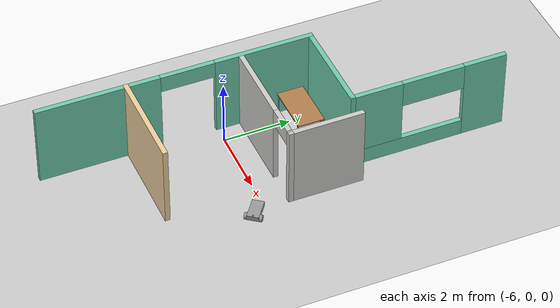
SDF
<sdf version="1.6">
 <world name="default">
  <model name="ground_plane">
   <static>1</static>
   <link name="link">
    <collision name="collision">
     <geometry><plane><normal>0 0 1</normal><size>100 100</size></plane></geometry>
     <surface><friction><ode><mu>100</mu><mu2>50</mu2></ode></friction></surface>
    </collision>
    <visual name="visual">
     <cast_shadows>0</cast_shadows>
     <geometry><plane><normal>0 0 1</normal><size>100 100</size></plane></geometry>
     <material>
      <script><uri>file://media/materials/scripts/gazebo.material</uri><name>Gazebo/Grey</name></script>
     </material>
    </visual>
   </link>
  </model>
  <model name="Building">
   <link name="Wall_271">
    <pose>-6.53342 -2.38169 0 0 -0 3.14159</pose>
    <visual name="Wall_271_Visual">
     <pose>0 0 1.25 0 -0 0</pose>
     <geometry><box><size>3 0.15 2.5</size></box></geometry>
     <material>
      <script><uri>file://media/materials/scripts/gazebo.material</uri><name>Gazebo/Grey</name></script>
      <ambient>0.921569 0.807843 0.615686 1</ambient>
      <shader type="pixel"/>
      <diffuse>0.7 0.7 0.7 1</diffuse>
      <specular>0.01 0.01 0.01 1</specular>
      <emissive>0 0 0 1</emissive>
     </material>
     <meta><layer>0</layer></meta>
    </visual>
    <collision name="Wall_271_Collision">
     <pose>0 0 1.25 0 -0 0</pose>
     <geometry><box><size>3 0.15 2.5</size></box></geometry>
     <surface>
      <friction>
       <ode><mu>1</mu><mu2>1</mu2><fdir1>0 0 0</fdir1><slip1>0</slip1><slip2>0</slip2></ode>
       <torsional>
        <coefficient>1</coefficient>
        <patch_radius>0</patch_radius>
        <surface_radius>0</surface_radius>
        <use_patch_radius>1</use_patch_radius>
        <ode><slip>0</slip></ode>
       </torsional>
      </friction>
      <bounce><restitution_coefficient>0</restitution_coefficient><threshold>1e+06</threshold></bounce>
      <contact>
       <collide_without_contact>0</collide_without_contact>
       <collide_without_contact_bitmask>1</collide_without_contact_bitmask>
       <collide_bitmask>1</collide_bitmask>
       <ode>
        <soft_cfm>0</soft_cfm>
        <soft_erp>0.2</soft_erp>
        <kp>1e+13</kp>
        <kd>1</kd>
        <max_vel>0.01</max_vel>
        <min_depth>0</min_depth>
       </ode>
       <bullet>
        <split_impulse>1</split_impulse>
        <split_impulse_penetration_threshold>-0.01</split_impulse_penetration_threshold>
        <soft_cfm>0</soft_cfm>
        <soft_erp>0.2</soft_erp>
        <kp>1e+13</kp>
        <kd>1</kd>
       </bullet>
      </contact>
     </surface>
    </collision>
   </link>
   <link name="Wall_3">
    <pose>-5.10853 5.41846 0 0 0 -1.5708</pose>
    <visual name="Wall_3_Visual_0">
     <pose>-1.72863 0 1.25 0 -0 0</pose>
     <geometry><box><size>1.29275 0.15 2.5</size></box></geometry>
     <material>
      <script><uri>file://media/materials/scripts/gazebo.material</uri><name>Gazebo/Grey</name></script>
      <ambient>0.435294 0.796078 0.67451 1</ambient>
      <shader type="pixel"/>
      <diffuse>0.7 0.7 0.7 1</diffuse>
      <specular>0.01 0.01 0.01 1</specular>
      <emissive>0 0 0 1</emissive>
     </material>
     <meta><layer>0</layer></meta>
    </visual>
    <visual name="Wall_3_Visual_1">
     <pose>0.646374 0 0.25 0 -0 0</pose>
     <geometry><box><size>3.45725 0.15 0.5</size></box></geometry>
     <material>
      <script><uri>file://media/materials/scripts/gazebo.material</uri><name>Gazebo/Grey</name></script>
      <ambient>0.435294 0.796078 0.67451 1</ambient>
      <shader type="pixel"/>
      <diffuse>0.7 0.7 0.7 1</diffuse>
      <specular>0.01 0.01 0.01 1</specular>
      <emissive>0 0 0 1</emissive>
     </material>
     <meta><layer>0</layer></meta>
    </visual>
    <visual name="Wall_3_Visual_2">
     <pose>1.58537 0 1.5 0 -0 0</pose>
     <geometry><box><size>1.57925 0.15 2</size></box></geometry>
     <material>
      <script><uri>file://media/materials/scripts/gazebo.material</uri><name>Gazebo/Grey</name></script>
      <ambient>0.435294 0.796078 0.67451 1</ambient>
      <shader type="pixel"/>
      <diffuse>0.7 0.7 0.7 1</diffuse>
      <specular>0.01 0.01 0.01 1</specular>
      <emissive>0 0 0 1</emissive>
     </material>
     <meta><layer>0</layer></meta>
    </visual>
    <visual name="Wall_3_Visual_3">
     <pose>-0.143253 0 2.1 0 -0 0</pose>
     <geometry><box><size>1.878 0.15 0.8</size></box></geometry>
     <material>
      <script><uri>file://media/materials/scripts/gazebo.material</uri><name>Gazebo/Grey</name></script>
      <ambient>0.435294 0.796078 0.67451 1</ambient>
      <shader type="pixel"/>
      <diffuse>0.7 0.7 0.7 1</diffuse>
      <specular>0.01 0.01 0.01 1</specular>
      <emissive>0 0 0 1</emissive>
     </material>
     <meta><layer>0</layer></meta>
    </visual>
    <collision name="Wall_3_Collision_3">
     <pose>-0.143253 0 2.1 0 -0 0</pose>
     <geometry><box><size>1.878 0.15 0.8</size></box></geometry>
     <surface>
      <friction>
       <ode><mu>1</mu><mu2>1</mu2><fdir1>0 0 0</fdir1><slip1>0</slip1><slip2>0</slip2></ode>
       <torsional>
        <coefficient>1</coefficient>
        <patch_radius>0</patch_radius>
        <surface_radius>0</surface_radius>
        <use_patch_radius>1</use_patch_radius>
        <ode><slip>0</slip></ode>
       </torsional>
      </friction>
      <bounce><restitution_coefficient>0</restitution_coefficient><threshold>1e+06</threshold></bounce>
      <contact>
       <collide_without_contact>0</collide_without_contact>
       <collide_without_contact_bitmask>1</collide_without_contact_bitmask>
       <collide_bitmask>1</collide_bitmask>
       <ode>
        <soft_cfm>0</soft_cfm>
        <soft_erp>0.2</soft_erp>
        <kp>1e+13</kp>
        <kd>1</kd>
        <max_vel>0.01</max_vel>
        <min_depth>0</min_depth>
       </ode>
       <bullet>
        <split_impulse>1</split_impulse>
        <split_impulse_penetration_threshold>-0.01</split_impulse_penetration_threshold>
        <soft_cfm>0</soft_cfm>
        <soft_erp>0.2</soft_erp>
        <kp>1e+13</kp>
        <kd>1</kd>
       </bullet>
      </contact>
     </surface>
    </collision>
    <collision name="Wall_3_Collision_0">
     <pose>-1.72863 0 1.25 0 -0 0</pose>
     <geometry><box><size>1.29275 0.15 2.5</size></box></geometry>
     <surface>
      <friction>
       <ode><mu>1</mu><mu2>1</mu2><fdir1>0 0 0</fdir1><slip1>0</slip1><slip2>0</slip2></ode>
       <torsional>
        <coefficient>1</coefficient>
        <patch_radius>0</patch_radius>
        <surface_radius>0</surface_radius>
        <use_patch_radius>1</use_patch_radius>
        <ode><slip>0</slip></ode>
       </torsional>
      </friction>
      <bounce><restitution_coefficient>0</restitution_coefficient><threshold>1e+06</threshold></bounce>
      <contact>
       <collide_without_contact>0</collide_without_contact>
       <collide_without_contact_bitmask>1</collide_without_contact_bitmask>
       <collide_bitmask>1</collide_bitmask>
       <ode>
        <soft_cfm>0</soft_cfm>
        <soft_erp>0.2</soft_erp>
        <kp>1e+13</kp>
        <kd>1</kd>
        <max_vel>0.01</max_vel>
        <min_depth>0</min_depth>
       </ode>
       <bullet>
        <split_impulse>1</split_impulse>
        <split_impulse_penetration_threshold>-0.01</split_impulse_penetration_threshold>
        <soft_cfm>0</soft_cfm>
        <soft_erp>0.2</soft_erp>
        <kp>1e+13</kp>
        <kd>1</kd>
       </bullet>
      </contact>
     </surface>
    </collision>
    <collision name="Wall_3_Collision_1">
     <pose>0.646374 0 0.25 0 -0 0</pose>
     <geometry><box><size>3.45725 0.15 0.5</size></box></geometry>
     <surface>
      <friction>
       <ode><mu>1</mu><mu2>1</mu2><fdir1>0 0 0</fdir1><slip1>0</slip1><slip2>0</slip2></ode>
       <torsional>
        <coefficient>1</coefficient>
        <patch_radius>0</patch_radius>
        <surface_radius>0</surface_radius>
        <use_patch_radius>1</use_patch_radius>
        <ode><slip>0</slip></ode>
       </torsional>
      </friction>
      <bounce><restitution_coefficient>0</restitution_coefficient><threshold>1e+06</threshold></bounce>
      <contact>
       <collide_without_contact>0</collide_without_contact>
       <collide_without_contact_bitmask>1</collide_without_contact_bitmask>
       <collide_bitmask>1</collide_bitmask>
       <ode>
        <soft_cfm>0</soft_cfm>
        <soft_erp>0.2</soft_erp>
        <kp>1e+13</kp>
        <kd>1</kd>
        <max_vel>0.01</max_vel>
        <min_depth>0</min_depth>
       </ode>
       <bullet>
        <split_impulse>1</split_impulse>
        <split_impulse_penetration_threshold>-0.01</split_impulse_penetration_threshold>
        <soft_cfm>0</soft_cfm>
        <soft_erp>0.2</soft_erp>
        <kp>1e+13</kp>
        <kd>1</kd>
       </bullet>
      </contact>
     </surface>
    </collision>
    <collision name="Wall_3_Collision_2">
     <pose>1.58537 0 1.5 0 -0 0</pose>
     <geometry><box><size>1.57925 0.15 2</size></box></geometry>
     <surface>
      <friction>
       <ode><mu>1</mu><mu2>1</mu2><fdir1>0 0 0</fdir1><slip1>0</slip1><slip2>0</slip2></ode>
       <torsional>
        <coefficient>1</coefficient>
        <patch_radius>0</patch_radius>
        <surface_radius>0</surface_radius>
        <use_patch_radius>1</use_patch_radius>
        <ode><slip>0</slip></ode>
       </torsional>
      </friction>
      <bounce><restitution_coefficient>0</restitution_coefficient><threshold>1e+06</threshold></bounce>
      <contact>
       <collide_without_contact>0</collide_without_contact>
       <collide_without_contact_bitmask>1</collide_without_contact_bitmask>
       <collide_bitmask>1</collide_bitmask>
       <ode>
        <soft_cfm>0</soft_cfm>
        <soft_erp>0.2</soft_erp>
        <kp>1e+13</kp>
        <kd>1</kd>
        <max_vel>0.01</max_vel>
        <min_depth>0</min_depth>
       </ode>
       <bullet>
        <split_impulse>1</split_impulse>
        <split_impulse_penetration_threshold>-0.01</split_impulse_penetration_threshold>
        <soft_cfm>0</soft_cfm>
        <soft_erp>0.2</soft_erp>
        <kp>1e+13</kp>
        <kd>1</kd>
       </bullet>
      </contact>
     </surface>
    </collision>
   </link>
   <link name="Wall_349">
    <pose>-4.45949 2.05019 0 0 0 -1.5708</pose>
    <visual name="Wall_349_Visual">
     <pose>0 0 1.25 0 -0 0</pose>
     <geometry><box><size>2.25 0.15 2.5</size></box></geometry>
     <material>
      <script><uri>file://media/materials/scripts/gazebo.material</uri><name>Gazebo/CeilingTiled</name></script>
      <ambient>0.921569 0.807843 0.615686 1</ambient>
      <shader type="pixel"/>
      <diffuse>1 1 1 1</diffuse>
      <specular>0 0 0 1</specular>
      <emissive>0 0 0 1</emissive>
     </material>
     <meta><layer>0</layer></meta>
    </visual>
    <collision name="Wall_349_Collision">
     <pose>0 0 1.25 0 -0 0</pose>
     <geometry><box><size>2.25 0.15 2.5</size></box></geometry>
     <surface>
      <friction>
       <ode><mu>1</mu><mu2>1</mu2><fdir1>0 0 0</fdir1><slip1>0</slip1><slip2>0</slip2></ode>
       <torsional>
        <coefficient>1</coefficient>
        <patch_radius>0</patch_radius>
        <surface_radius>0</surface_radius>
        <use_patch_radius>1</use_patch_radius>
        <ode><slip>0</slip></ode>
       </torsional>
      </friction>
      <bounce><restitution_coefficient>0</restitution_coefficient><threshold>1e+06</threshold></bounce>
      <contact>
       <collide_without_contact>0</collide_without_contact>
       <collide_without_contact_bitmask>1</collide_without_contact_bitmask>
       <collide_bitmask>1</collide_bitmask>
       <ode>
        <soft_cfm>0</soft_cfm>
        <soft_erp>0.2</soft_erp>
        <kp>1e+13</kp>
        <kd>1</kd>
        <max_vel>0.01</max_vel>
        <min_depth>0</min_depth>
       </ode>
       <bullet>
        <split_impulse>1</split_impulse>
        <split_impulse_penetration_threshold>-0.01</split_impulse_penetration_threshold>
        <soft_cfm>0</soft_cfm>
        <soft_erp>0.2</soft_erp>
        <kp>1e+13</kp>
        <kd>1</kd>
       </bullet>
      </contact>
     </surface>
    </collision>
   </link>
   <link name="Wall_350">
    <pose>-6.13449 1.00019 0 0 -0 3.14159</pose>
    <visual name="Wall_350_Visual_0">
     <pose>-1.66412 0 1.25 0 -0 0</pose>
     <geometry><box><size>0.17176 0.15 2.5</size></box></geometry>
     <material>
      <script><uri>file://media/materials/scripts/gazebo.material</uri><name>Gazebo/CeilingTiled</name></script>
      <ambient>0.921569 0.807843 0.615686 1</ambient>
      <shader type="pixel"/>
      <diffuse>1 1 1 1</diffuse>
      <specular>0 0 0 1</specular>
      <emissive>0 0 0 1</emissive>
     </material>
     <meta><layer>0</layer></meta>
    </visual>
    <visual name="Wall_350_Visual_1">
     <pose>0.53588 0 1.25 0 -0 0</pose>
     <geometry><box><size>2.42824 0.15 2.5</size></box></geometry>
     <material>
      <script><uri>file://media/materials/scripts/gazebo.material</uri><name>Gazebo/CeilingTiled</name></script>
      <ambient>0.921569 0.807843 0.615686 1</ambient>
      <shader type="pixel"/>
      <diffuse>1 1 1 1</diffuse>
      <specular>0 0 0 1</specular>
      <emissive>0 0 0 1</emissive>
     </material>
     <meta><layer>0</layer></meta>
    </visual>
    <visual name="Wall_350_Visual_2">
     <pose>-1.12824 0 2.25 0 -0 0</pose>
     <geometry><box><size>0.9 0.15 0.5</size></box></geometry>
     <material>
      <script><uri>file://media/materials/scripts/gazebo.material</uri><name>Gazebo/CeilingTiled</name></script>
      <ambient>0.921569 0.807843 0.615686 1</ambient>
      <shader type="pixel"/>
      <diffuse>1 1 1 1</diffuse>
      <specular>0 0 0 1</specular>
      <emissive>0 0 0 1</emissive>
     </material>
     <meta><layer>0</layer></meta>
    </visual>
    <collision name="Wall_350_Collision_0">
     <pose>-1.66412 0 1.25 0 -0 0</pose>
     <geometry><box><size>0.17176 0.15 2.5</size></box></geometry>
     <surface>
      <friction>
       <ode><mu>1</mu><mu2>1</mu2><fdir1>0 0 0</fdir1><slip1>0</slip1><slip2>0</slip2></ode>
       <torsional>
        <coefficient>1</coefficient>
        <patch_radius>0</patch_radius>
        <surface_radius>0</surface_radius>
        <use_patch_radius>1</use_patch_radius>
        <ode><slip>0</slip></ode>
       </torsional>
      </friction>
      <bounce><restitution_coefficient>0</restitution_coefficient><threshold>1e+06</threshold></bounce>
      <contact>
       <collide_without_contact>0</collide_without_contact>
       <collide_without_contact_bitmask>1</collide_without_contact_bitmask>
       <collide_bitmask>1</collide_bitmask>
       <ode>
        <soft_cfm>0</soft_cfm>
        <soft_erp>0.2</soft_erp>
        <kp>1e+13</kp>
        <kd>1</kd>
        <max_vel>0.01</max_vel>
        <min_depth>0</min_depth>
       </ode>
       <bullet>
        <split_impulse>1</split_impulse>
        <split_impulse_penetration_threshold>-0.01</split_impulse_penetration_threshold>
        <soft_cfm>0</soft_cfm>
        <soft_erp>0.2</soft_erp>
        <kp>1e+13</kp>
        <kd>1</kd>
       </bullet>
      </contact>
     </surface>
    </collision>
    <collision name="Wall_350_Collision_1">
     <pose>0.53588 0 1.25 0 -0 0</pose>
     <geometry><box><size>2.42824 0.15 2.5</size></box></geometry>
     <surface>
      <friction>
       <ode><mu>1</mu><mu2>1</mu2><fdir1>0 0 0</fdir1><slip1>0</slip1><slip2>0</slip2></ode>
       <torsional>
        <coefficient>1</coefficient>
        <patch_radius>0</patch_radius>
        <surface_radius>0</surface_radius>
        <use_patch_radius>1</use_patch_radius>
        <ode><slip>0</slip></ode>
       </torsional>
      </friction>
      <bounce><restitution_coefficient>0</restitution_coefficient><threshold>1e+06</threshold></bounce>
      <contact>
       <collide_without_contact>0</collide_without_contact>
       <collide_without_contact_bitmask>1</collide_without_contact_bitmask>
       <collide_bitmask>1</collide_bitmask>
       <ode>
        <soft_cfm>0</soft_cfm>
        <soft_erp>0.2</soft_erp>
        <kp>1e+13</kp>
        <kd>1</kd>
        <max_vel>0.01</max_vel>
        <min_depth>0</min_depth>
       </ode>
       <bullet>
        <split_impulse>1</split_impulse>
        <split_impulse_penetration_threshold>-0.01</split_impulse_penetration_threshold>
        <soft_cfm>0</soft_cfm>
        <soft_erp>0.2</soft_erp>
        <kp>1e+13</kp>
        <kd>1</kd>
       </bullet>
      </contact>
     </surface>
    </collision>
    <collision name="Wall_350_Collision_2">
     <pose>-1.12824 0 2.25 0 -0 0</pose>
     <geometry><box><size>0.9 0.15 0.5</size></box></geometry>
     <surface>
      <friction>
       <ode><mu>1</mu><mu2>1</mu2><fdir1>0 0 0</fdir1><slip1>0</slip1><slip2>0</slip2></ode>
       <torsional>
        <coefficient>1</coefficient>
        <patch_radius>0</patch_radius>
        <surface_radius>0</surface_radius>
        <use_patch_radius>1</use_patch_radius>
        <ode><slip>0</slip></ode>
       </torsional>
      </friction>
      <bounce><restitution_coefficient>0</restitution_coefficient><threshold>1e+06</threshold></bounce>
      <contact>
       <collide_without_contact>0</collide_without_contact>
       <collide_without_contact_bitmask>1</collide_without_contact_bitmask>
       <collide_bitmask>1</collide_bitmask>
       <ode>
        <soft_cfm>0</soft_cfm>
        <soft_erp>0.2</soft_erp>
        <kp>1e+13</kp>
        <kd>1</kd>
        <max_vel>0.01</max_vel>
        <min_depth>0</min_depth>
       </ode>
       <bullet>
        <split_impulse>1</split_impulse>
        <split_impulse_penetration_threshold>-0.01</split_impulse_penetration_threshold>
        <soft_cfm>0</soft_cfm>
        <soft_erp>0.2</soft_erp>
        <kp>1e+13</kp>
        <kd>1</kd>
       </bullet>
      </contact>
     </surface>
    </collision>
   </link>
   <link name="Wall_4">
    <pose>-6.53348 3.11838 0 0 0 -3.14154</pose>
    <visual name="Wall_4_Visual">
     <pose>0 0 1.25 0 -0 0</pose>
     <geometry><box><size>3 0.15 2.5</size></box></geometry>
     <material>
      <script><uri>file://media/materials/scripts/gazebo.material</uri><name>Gazebo/Grey</name></script>
      <ambient>0.435294 0.796078 0.67451 1</ambient>
      <shader type="pixel"/>
      <diffuse>0.7 0.7 0.7 1</diffuse>
      <specular>0.01 0.01 0.01 1</specular>
      <emissive>0 0 0 1</emissive>
     </material>
     <meta><layer>0</layer></meta>
    </visual>
    <collision name="Wall_4_Collision">
     <pose>0 0 1.25 0 -0 0</pose>
     <geometry><box><size>3 0.15 2.5</size></box></geometry>
     <surface>
      <friction>
       <ode><mu>1</mu><mu2>1</mu2><fdir1>0 0 0</fdir1><slip1>0</slip1><slip2>0</slip2></ode>
       <torsional>
        <coefficient>1</coefficient>
        <patch_radius>0</patch_radius>
        <surface_radius>0</surface_radius>
        <use_patch_radius>1</use_patch_radius>
        <ode><slip>0</slip></ode>
       </torsional>
      </friction>
      <bounce><restitution_coefficient>0</restitution_coefficient><threshold>1e+06</threshold></bounce>
      <contact>
       <collide_without_contact>0</collide_without_contact>
       <collide_without_contact_bitmask>1</collide_without_contact_bitmask>
       <collide_bitmask>1</collide_bitmask>
       <ode>
        <soft_cfm>0</soft_cfm>
        <soft_erp>0.2</soft_erp>
        <kp>1e+13</kp>
        <kd>1</kd>
        <max_vel>0.01</max_vel>
        <min_depth>0</min_depth>
       </ode>
       <bullet>
        <split_impulse>1</split_impulse>
        <split_impulse_penetration_threshold>-0.01</split_impulse_penetration_threshold>
        <soft_cfm>0</soft_cfm>
        <soft_erp>0.2</soft_erp>
        <kp>1e+13</kp>
        <kd>1</kd>
       </bullet>
      </contact>
     </surface>
    </collision>
   </link>
   <link name="Wall_5">
    <pose>-7.95842 -0.931691 0 0 0 -1.5708</pose>
    <visual name="Wall_5_Visual_0">
     <pose>-2.6376 0 1.25 0 -0 0</pose>
     <geometry><box><size>2.9748 0.15 2.5</size></box></geometry>
     <material>
      <script><uri>file://media/materials/scripts/gazebo.material</uri><name>Gazebo/Grey</name></script>
      <ambient>0.435294 0.796078 0.67451 1</ambient>
      <shader type="pixel"/>
      <diffuse>0.7 0.7 0.7 1</diffuse>
      <specular>0.01 0.01 0.01 1</specular>
      <emissive>0 0 0 1</emissive>
     </material>
     <meta><layer>0</layer></meta>
    </visual>
    <visual name="Wall_5_Visual_1">
     <pose>2.29573 0 1.25 0 -0 0</pose>
     <geometry><box><size>3.65854 0.15 2.5</size></box></geometry>
     <material>
      <script><uri>file://media/materials/scripts/gazebo.material</uri><name>Gazebo/Grey</name></script>
      <ambient>0.435294 0.796078 0.67451 1</ambient>
      <shader type="pixel"/>
      <diffuse>0.7 0.7 0.7 1</diffuse>
      <specular>0.01 0.01 0.01 1</specular>
      <emissive>0 0 0 1</emissive>
     </material>
     <meta><layer>0</layer></meta>
    </visual>
    <visual name="Wall_5_Visual_2">
     <pose>-0.341874 0 2.25 0 -0 0</pose>
     <geometry><box><size>1.61666 0.15 0.5</size></box></geometry>
     <material>
      <script><uri>file://media/materials/scripts/gazebo.material</uri><name>Gazebo/Grey</name></script>
      <ambient>0.435294 0.796078 0.67451 1</ambient>
      <shader type="pixel"/>
      <diffuse>0.7 0.7 0.7 1</diffuse>
      <specular>0.01 0.01 0.01 1</specular>
      <emissive>0 0 0 1</emissive>
     </material>
     <meta><layer>0</layer></meta>
    </visual>
    <collision name="Wall_5_Collision_1">
     <pose>2.29573 0 1.25 0 -0 0</pose>
     <geometry><box><size>3.65854 0.15 2.5</size></box></geometry>
     <surface>
      <friction>
       <ode><mu>1</mu><mu2>1</mu2><fdir1>0 0 0</fdir1><slip1>0</slip1><slip2>0</slip2></ode>
       <torsional>
        <coefficient>1</coefficient>
        <patch_radius>0</patch_radius>
        <surface_radius>0</surface_radius>
        <use_patch_radius>1</use_patch_radius>
        <ode><slip>0</slip></ode>
       </torsional>
      </friction>
      <bounce><restitution_coefficient>0</restitution_coefficient><threshold>1e+06</threshold></bounce>
      <contact>
       <collide_without_contact>0</collide_without_contact>
       <collide_without_contact_bitmask>1</collide_without_contact_bitmask>
       <collide_bitmask>1</collide_bitmask>
       <ode>
        <soft_cfm>0</soft_cfm>
        <soft_erp>0.2</soft_erp>
        <kp>1e+13</kp>
        <kd>1</kd>
        <max_vel>0.01</max_vel>
        <min_depth>0</min_depth>
       </ode>
       <bullet>
        <split_impulse>1</split_impulse>
        <split_impulse_penetration_threshold>-0.01</split_impulse_penetration_threshold>
        <soft_cfm>0</soft_cfm>
        <soft_erp>0.2</soft_erp>
        <kp>1e+13</kp>
        <kd>1</kd>
       </bullet>
      </contact>
     </surface>
    </collision>
    <collision name="Wall_5_Collision_0">
     <pose>-2.6376 0 1.25 0 -0 0</pose>
     <geometry><box><size>2.9748 0.15 2.5</size></box></geometry>
     <surface>
      <friction>
       <ode><mu>1</mu><mu2>1</mu2><fdir1>0 0 0</fdir1><slip1>0</slip1><slip2>0</slip2></ode>
       <torsional>
        <coefficient>1</coefficient>
        <patch_radius>0</patch_radius>
        <surface_radius>0</surface_radius>
        <use_patch_radius>1</use_patch_radius>
        <ode><slip>0</slip></ode>
       </torsional>
      </friction>
      <bounce><restitution_coefficient>0</restitution_coefficient><threshold>1e+06</threshold></bounce>
      <contact>
       <collide_without_contact>0</collide_without_contact>
       <collide_without_contact_bitmask>1</collide_without_contact_bitmask>
       <collide_bitmask>1</collide_bitmask>
       <ode>
        <soft_cfm>0</soft_cfm>
        <soft_erp>0.2</soft_erp>
        <kp>1e+13</kp>
        <kd>1</kd>
        <max_vel>0.01</max_vel>
        <min_depth>0</min_depth>
       </ode>
       <bullet>
        <split_impulse>1</split_impulse>
        <split_impulse_penetration_threshold>-0.01</split_impulse_penetration_threshold>
        <soft_cfm>0</soft_cfm>
        <soft_erp>0.2</soft_erp>
        <kp>1e+13</kp>
        <kd>1</kd>
       </bullet>
      </contact>
     </surface>
    </collision>
    <collision name="Wall_5_Collision_2">
     <pose>-0.341874 0 2.25 0 -0 0</pose>
     <geometry><box><size>1.61666 0.15 0.5</size></box></geometry>
     <surface>
      <friction>
       <ode><mu>1</mu><mu2>1</mu2><fdir1>0 0 0</fdir1><slip1>0</slip1><slip2>0</slip2></ode>
       <torsional>
        <coefficient>1</coefficient>
        <patch_radius>0</patch_radius>
        <surface_radius>0</surface_radius>
        <use_patch_radius>1</use_patch_radius>
        <ode><slip>0</slip></ode>
       </torsional>
      </friction>
      <bounce><restitution_coefficient>0</restitution_coefficient><threshold>1e+06</threshold></bounce>
      <contact>
       <collide_without_contact>0</collide_without_contact>
       <collide_without_contact_bitmask>1</collide_without_contact_bitmask>
       <collide_bitmask>1</collide_bitmask>
       <ode>
        <soft_cfm>0</soft_cfm>
        <soft_erp>0.2</soft_erp>
        <kp>1e+13</kp>
        <kd>1</kd>
        <max_vel>0.01</max_vel>
        <min_depth>0</min_depth>
       </ode>
       <bullet>
        <split_impulse>1</split_impulse>
        <split_impulse_penetration_threshold>-0.01</split_impulse_penetration_threshold>
        <soft_cfm>0</soft_cfm>
        <soft_erp>0.2</soft_erp>
        <kp>1e+13</kp>
        <kd>1</kd>
       </bullet>
      </contact>
     </surface>
    </collision>
   </link>
   <static>1</static>
   <pose>1.39929 -0.252215 0 0 -0 0</pose>
  </model>
  <model name="table_0">
   <static>1</static>
   <link name="link">
    <collision name="surface">
     <pose>0 0 1 0 -0 0</pose>
     <geometry><box><size>1.5 0.8 0.03</size></box></geometry>
     <surface><friction><ode><mu>0.6</mu><mu2>0.6</mu2></ode></friction></surface>
    </collision>
    <visual name="visual1">
     <pose>0 0 1 0 -0 0</pose>
     <geometry><box><size>1.5 0.8 0.03</size></box></geometry>
     <material>
      <script><uri>file://media/materials/scripts/gazebo.material</uri><name>Gazebo/Wood</name></script>
     </material>
    </visual>
    <collision name="front_left_leg">
     <pose>0.68 0.38 0.5 0 -0 0</pose>
     <geometry><cylinder><radius>0.02</radius><length>1</length></cylinder></geometry>
    </collision>
    <visual name="front_left_leg">
     <pose>0.68 0.38 0.5 0 -0 0</pose>
     <geometry><cylinder><radius>0.02</radius><length>1</length></cylinder></geometry>
     <material>
      <script><uri>file://media/materials/scripts/gazebo.material</uri><name>Gazebo/Grey</name></script>
     </material>
    </visual>
    <collision name="front_right_leg">
     <pose>0.68 -0.38 0.5 0 -0 0</pose>
     <geometry><cylinder><radius>0.02</radius><length>1</length></cylinder></geometry>
    </collision>
    <visual name="front_right_leg">
     <pose>0.68 -0.38 0.5 0 -0 0</pose>
     <geometry><cylinder><radius>0.02</radius><length>1</length></cylinder></geometry>
     <material>
      <script><uri>file://media/materials/scripts/gazebo.material</uri><name>Gazebo/Grey</name></script>
     </material>
    </visual>
    <collision name="back_right_leg">
     <pose>-0.68 -0.38 0.5 0 -0 0</pose>
     <geometry><cylinder><radius>0.02</radius><length>1</length></cylinder></geometry>
    </collision>
    <visual name="back_right_leg">
     <pose>-0.68 -0.38 0.5 0 -0 0</pose>
     <geometry><cylinder><radius>0.02</radius><length>1</length></cylinder></geometry>
     <material>
      <script><uri>file://media/materials/scripts/gazebo.material</uri><name>Gazebo/Grey</name></script>
     </material>
    </visual>
    <collision name="back_left_leg">
     <pose>-0.68 0.38 0.5 0 -0 0</pose>
     <geometry><cylinder><radius>0.02</radius><length>1</length></cylinder></geometry>
    </collision>
    <visual name="back_left_leg">
     <pose>-0.68 0.38 0.5 0 -0 0</pose>
     <geometry><cylinder><radius>0.02</radius><length>1</length></cylinder></geometry>
     <material>
      <script><uri>file://media/materials/scripts/gazebo.material</uri><name>Gazebo/Grey</name></script>
     </material>
    </visual>
   </link>
   <pose>-5.43079 2.09847 0 0 -0 0</pose>
  </model>
  <model name="VehicleRobot">
   <link name="link_10_clone">
    <pose>0.278989 0.302807 0.099972 1.5707 -0 0</pose>
    <inertial>
     <mass>0.5</mass>
     <inertia><ixx>0.145833</ixx><ixy>0</ixy><ixz>0</ixz><iyy>0.145833</iyy><iyz>0</iyz><izz>0.125</izz></inertia>
    </inertial>
    <visual name="visual">
     <geometry><cylinder><radius>0.1</radius><length>0.08</length></cylinder></geometry>
     <material>
      <lighting>1</lighting>
      <script><uri>file://media/materials/scripts/gazebo.material</uri><name>Gazebo/Grey</name></script>
      <shader type="pixel"><normal_map>__default__</normal_map></shader>
      <ambient>0.3 0.3 0.3 1</ambient>
      <diffuse>0.7 0.7 0.7 1</diffuse>
      <specular>0.01 0.01 0.01 1</specular>
      <emissive>0 0 0 1</emissive>
     </material>
    </visual>
    <collision name="collision">
     <geometry><cylinder><radius>0.1</radius><length>0.08</length></cylinder></geometry>
     <surface>
      <friction>
       <ode><mu>1</mu><mu2>1</mu2><fdir1>0 0 0</fdir1><slip1>0</slip1><slip2>0</slip2></ode>
       <torsional>
        <coefficient>1</coefficient>
        <patch_radius>0</patch_radius>
        <surface_radius>0</surface_radius>
        <use_patch_radius>1</use_patch_radius>
        <ode><slip>0</slip></ode>
       </torsional>
      </friction>
      <bounce><restitution_coefficient>0</restitution_coefficient><threshold>1e+06</threshold></bounce>
      <contact>
       <collide_without_contact>0</collide_without_contact>
       <collide_without_contact_bitmask>1</collide_without_contact_bitmask>
       <collide_bitmask>1</collide_bitmask>
       <ode>
        <soft_cfm>0</soft_cfm>
        <soft_erp>0.2</soft_erp>
        <kp>1e+13</kp>
        <kd>1</kd>
        <max_vel>0.01</max_vel>
        <min_depth>0</min_depth>
       </ode>
       <bullet>
        <split_impulse>1</split_impulse>
        <split_impulse_penetration_threshold>-0.01</split_impulse_penetration_threshold>
        <soft_cfm>0</soft_cfm>
        <soft_erp>0.2</soft_erp>
        <kp>1e+13</kp>
        <kd>1</kd>
       </bullet>
      </contact>
     </surface>
    </collision>
   </link>
   <link name="link_10_clone_clone">
    <pose>0.278989 -0.128364 0.100018 1.5707 -0 0</pose>
    <inertial>
     <mass>0.5</mass>
     <inertia><ixx>0.145833</ixx><ixy>0</ixy><ixz>0</ixz><iyy>0.145833</iyy><iyz>0</iyz><izz>0.125</izz></inertia>
    </inertial>
    <visual name="visual">
     <geometry><cylinder><radius>0.1</radius><length>0.08</length></cylinder></geometry>
     <material>
      <lighting>1</lighting>
      <script><uri>file://media/materials/scripts/gazebo.material</uri><name>Gazebo/Grey</name></script>
      <shader type="pixel"><normal_map>__default__</normal_map></shader>
      <ambient>0.3 0.3 0.3 1</ambient>
      <diffuse>0.7 0.7 0.7 1</diffuse>
      <specular>0.01 0.01 0.01 1</specular>
      <emissive>0 0 0 1</emissive>
     </material>
    </visual>
    <collision name="collision">
     <geometry><cylinder><radius>0.1</radius><length>0.08</length></cylinder></geometry>
     <surface>
      <friction>
       <ode><mu>1</mu><mu2>1</mu2><fdir1>0 0 0</fdir1><slip1>0</slip1><slip2>0</slip2></ode>
       <torsional>
        <coefficient>1</coefficient>
        <patch_radius>0</patch_radius>
        <surface_radius>0</surface_radius>
        <use_patch_radius>1</use_patch_radius>
        <ode><slip>0</slip></ode>
       </torsional>
      </friction>
      <bounce><restitution_coefficient>0</restitution_coefficient><threshold>1e+06</threshold></bounce>
      <contact>
       <collide_without_contact>0</collide_without_contact>
       <collide_without_contact_bitmask>1</collide_without_contact_bitmask>
       <collide_bitmask>1</collide_bitmask>
       <ode>
        <soft_cfm>0</soft_cfm>
        <soft_erp>0.2</soft_erp>
        <kp>1e+13</kp>
        <kd>1</kd>
        <max_vel>0.01</max_vel>
        <min_depth>0</min_depth>
       </ode>
       <bullet>
        <split_impulse>1</split_impulse>
        <split_impulse_penetration_threshold>-0.01</split_impulse_penetration_threshold>
        <soft_cfm>0</soft_cfm>
        <soft_erp>0.2</soft_erp>
        <kp>1e+13</kp>
        <kd>1</kd>
       </bullet>
      </contact>
     </surface>
    </collision>
   </link>
   <link name="link_11">
    <pose>-0.191011 0.086646 0.08 0 -0 0</pose>
    <inertial>
     <mass>0.5</mass>
     <inertia><ixx>0.1</ixx><ixy>0</ixy><ixz>0</ixz><iyy>0.1</iyy><iyz>0</iyz><izz>0.1</izz></inertia>
    </inertial>
    <visual name="visual">
     <geometry><sphere><radius>0.08</radius></sphere></geometry>
     <material>
      <lighting>1</lighting>
      <script><uri>file://media/materials/scripts/gazebo.material</uri><name>Gazebo/Grey</name></script>
      <shader type="pixel"><normal_map>__default__</normal_map></shader>
      <ambient>0.3 0.3 0.3 1</ambient>
      <diffuse>0.7 0.7 0.7 1</diffuse>
      <specular>0.01 0.01 0.01 1</specular>
      <emissive>0 0 0 1</emissive>
     </material>
    </visual>
    <collision name="collision">
     <geometry><sphere><radius>0.08</radius></sphere></geometry>
     <surface>
      <friction>
       <ode><mu>1</mu><mu2>1</mu2><fdir1>0 0 0</fdir1><slip1>0</slip1><slip2>0</slip2></ode>
       <torsional>
        <coefficient>1</coefficient>
        <patch_radius>0</patch_radius>
        <surface_radius>0</surface_radius>
        <use_patch_radius>1</use_patch_radius>
        <ode><slip>0</slip></ode>
       </torsional>
      </friction>
      <bounce><restitution_coefficient>0</restitution_coefficient><threshold>1e+06</threshold></bounce>
      <contact>
       <collide_without_contact>0</collide_without_contact>
       <collide_without_contact_bitmask>1</collide_without_contact_bitmask>
       <collide_bitmask>1</collide_bitmask>
       <ode>
        <soft_cfm>0</soft_cfm>
        <soft_erp>0.2</soft_erp>
        <kp>1e+13</kp>
        <kd>1</kd>
        <max_vel>0.01</max_vel>
        <min_depth>0</min_depth>
       </ode>
       <bullet>
        <split_impulse>1</split_impulse>
        <split_impulse_penetration_threshold>-0.01</split_impulse_penetration_threshold>
        <soft_cfm>0</soft_cfm>
        <soft_erp>0.2</soft_erp>
        <kp>1e+13</kp>
        <kd>1</kd>
       </bullet>
      </contact>
     </surface>
    </collision>
   </link>
   <link name="link_9">
    <pose>0.053989 0.086646 0.13 0 -0 0</pose>
    <inertial>
     <mass>0.5</mass>
     <inertia>
      <ixx>0.166667</ixx>
      <ixy>0</ixy>
      <ixz>0</ixz>
      <iyy>0.166667</iyy>
      <iyz>0</iyz>
      <izz>0.166667</izz>
     </inertia>
    </inertial>
    <visual name="visual">
     <geometry><box><size>0.65 0.35 0.15</size></box></geometry>
     <material>
      <lighting>1</lighting>
      <script><uri>file://media/materials/scripts/gazebo.material</uri><name>Gazebo/Grey</name></script>
      <shader type="pixel"><normal_map>__default__</normal_map></shader>
      <ambient>0.3 0.3 0.3 1</ambient>
      <diffuse>0.7 0.7 0.7 1</diffuse>
      <specular>0.01 0.01 0.01 1</specular>
      <emissive>0 0 0 1</emissive>
     </material>
    </visual>
    <collision name="collision">
     <geometry><box><size>0.65 0.35 0.15</size></box></geometry>
     <surface>
      <friction>
       <ode><mu>1</mu><mu2>1</mu2><fdir1>0 0 0</fdir1><slip1>0</slip1><slip2>0</slip2></ode>
       <torsional>
        <coefficient>1</coefficient>
        <patch_radius>0</patch_radius>
        <surface_radius>0</surface_radius>
        <use_patch_radius>1</use_patch_radius>
        <ode><slip>0</slip></ode>
       </torsional>
      </friction>
      <bounce><restitution_coefficient>0</restitution_coefficient><threshold>1e+06</threshold></bounce>
      <contact>
       <collide_without_contact>0</collide_without_contact>
       <collide_without_contact_bitmask>1</collide_without_contact_bitmask>
       <collide_bitmask>1</collide_bitmask>
       <ode>
        <soft_cfm>0</soft_cfm>
        <soft_erp>0.2</soft_erp>
        <kp>1e+13</kp>
        <kd>1</kd>
        <max_vel>0.01</max_vel>
        <min_depth>0</min_depth>
       </ode>
       <bullet>
        <split_impulse>1</split_impulse>
        <split_impulse_penetration_threshold>-0.01</split_impulse_penetration_threshold>
        <soft_cfm>0</soft_cfm>
        <soft_erp>0.2</soft_erp>
        <kp>1e+13</kp>
        <kd>1</kd>
       </bullet>
      </contact>
     </surface>
    </collision>
   </link>
   <model name="camera">
    <link name="link">
     <inertial>
      <mass>0.04</mass>
      <inertia>
       <ixx>0.00016667</ixx>
       <iyy>0.00016667</iyy>
       <izz>0.00016667</izz>
       <ixy>0</ixy>
       <ixz>0</ixz>
       <iyz>0</iyz>
      </inertia>
     </inertial>
     <sensor name="camera" type="camera">
      <camera name="__default__">
       <horizontal_fov>1.047</horizontal_fov>
       <image><width>320</width><height>240</height></image>
       <clip><near>0.1</near><far>100</far></clip>
      </camera>
      <always_on>1</always_on>
      <update_rate>30</update_rate>
      <visualize>1</visualize>
     </sensor>
     <visual name="visual">
      <geometry><box><size>0.03 0.03 0.03</size></box></geometry>
      <material><shader type="pixel"><normal_map>__default__</normal_map></shader></material>
     </visual>
     <collision name="collision">
      <geometry><box><size>0.03 0.03 0.03</size></box></geometry>
      <surface>
       <friction>
        <ode><mu>1</mu><mu2>1</mu2><fdir1>0 0 0</fdir1><slip1>0</slip1><slip2>0</slip2></ode>
        <torsional>
         <coefficient>1</coefficient>
         <patch_radius>0</patch_radius>
         <surface_radius>0</surface_radius>
         <use_patch_radius>1</use_patch_radius>
         <ode><slip>0</slip></ode>
        </torsional>
       </friction>
       <bounce><restitution_coefficient>0</restitution_coefficient><threshold>1e+06</threshold></bounce>
       <contact>
        <collide_without_contact>0</collide_without_contact>
        <collide_without_contact_bitmask>1</collide_without_contact_bitmask>
        <collide_bitmask>1</collide_bitmask>
        <ode>
         <soft_cfm>0</soft_cfm>
         <soft_erp>0.2</soft_erp>
         <kp>1e+13</kp>
         <kd>1</kd>
         <max_vel>0.01</max_vel>
         <min_depth>0</min_depth>
        </ode>
        <bullet>
         <split_impulse>1</split_impulse>
         <split_impulse_penetration_threshold>-0.01</split_impulse_penetration_threshold>
         <soft_cfm>0</soft_cfm>
         <soft_erp>0.2</soft_erp>
         <kp>1e+13</kp>
         <kd>1</kd>
        </bullet>
       </contact>
      </surface>
     </collision>
    </link>
    <static>0</static>
    <pose>0.346819 0.087578 0.221125 0 -0 0</pose>
   </model>
   <joint name="link_9_JOINT_1" type="revolute">
    <parent>link_9</parent>
    <child>link_10_clone_clone</child>
    <axis>
     <xyz>0 0 1</xyz>
     <use_parent_model_frame>0</use_parent_model_frame>
     <limit>
      <lower>-1.79769e+308</lower>
      <upper>1.79769e+308</upper>
      <effort>-1</effort>
      <velocity>-1</velocity>
     </limit>
     <dynamics>
      <spring_reference>0</spring_reference>
      <spring_stiffness>0</spring_stiffness>
      <damping>0</damping>
      <friction>0</friction>
     </dynamics>
    </axis>
    <physics>
     <ode><limit><cfm>0</cfm><erp>0.2</erp></limit><suspension><cfm>0</cfm><erp>0.2</erp></suspension></ode>
    </physics>
   </joint>
   <joint name="link_9_JOINT_2" type="revolute">
    <parent>link_9</parent>
    <child>link_10_clone</child>
    <axis>
     <xyz>0 0 1</xyz>
     <use_parent_model_frame>0</use_parent_model_frame>
     <limit>
      <lower>-1.79769e+308</lower>
      <upper>1.79769e+308</upper>
      <effort>-1</effort>
      <velocity>-1</velocity>
     </limit>
     <dynamics>
      <spring_reference>0</spring_reference>
      <spring_stiffness>0</spring_stiffness>
      <damping>0</damping>
      <friction>0</friction>
     </dynamics>
    </axis>
    <physics>
     <ode><limit><cfm>0</cfm><erp>0.2</erp></limit><suspension><cfm>0</cfm><erp>0.2</erp></suspension></ode>
    </physics>
   </joint>
   <joint name="link_9_JOINT_3" type="ball">
    <parent>link_9</parent>
    <child>link_11</child>
    <physics>
     <ode><limit><cfm>0</cfm><erp>0.2</erp></limit><suspension><cfm>0</cfm><erp>0.2</erp></suspension></ode>
    </physics>
   </joint>
   <joint name="link_9_JOINT_5" type="fixed">
    <parent>link_9</parent>
    <child>camera::link</child>
    <physics>
     <ode><limit><cfm>0</cfm><erp>0.2</erp></limit><suspension><cfm>0</cfm><erp>0.2</erp></suspension></ode>
    </physics>
   </joint>
   <static>0</static>
   <pose>-3.01257 -0.378567 0.004505 0.000107 0.016116 -0.652582</pose>
  </model>
 </world>
</sdf>
